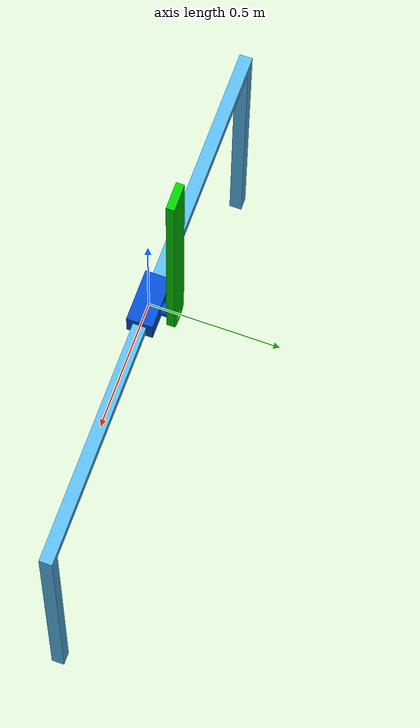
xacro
<?xml version="1.0"?>
<robot name="cart_pole" xmlns:xacro="http://ros.org/wiki/xacro">

  <xacro:property name="M_PI" value="3.14159274"/>

  <xacro:include filename="$(find robot_description)/urdf/base/base.urdf.xacro"/>
  <xacro:include filename="$(find robot_description)/urdf/cart/cart.urdf.xacro"/>
  <xacro:include filename="$(find robot_description)/urdf/pole/pole.urdf.xacro"/>
  <xacro:include filename="$(find robot_description)/urdf/tip/tip.urdf.xacro"/>

  <!-- =============== Link & Joint =============== -->
  <!-- Base -->
  <link name="base_footprint"/>
  <xacro:base_v0 parent="base_footprint">
	<origin xyz="0 0 0"/>
  </xacro:base_v0>

  <!-- Yaw_joint -->
  <xacro:cart_v0 parent="base_link">
	<origin xyz="0 0 0" rpy="0 0 0"/>
	<axis xyz="1 0 0"/>
  </xacro:cart_v0>

  <!-- Pitch_joint -->
  <xacro:pole_v0 parent="cart_link">
	<origin xyz="0 0.1 0" rpy="0 ${M_PI} 0"/>
	<axis xyz="0 1 0"/>
  </xacro:pole_v0>

  <xacro:tip_v0 parent="pole_link">
    <origin xyz="0 0 -1" rpy="0 0 0"/>
    <axis xyz="0 1 0"/>
  </xacro:tip_v0>

  <!-- =============== Transmissions =============== -->
  <xacro:cart_trans_v0/>

  <!-- =============== Gazebo =============== -->
  <gazebo>
    <plugin name="gazebo_ros_control" filename="libgazebo_ros_control.so"/>
  </gazebo>

  <xacro:base_gazebo_v0/>
  <xacro:cart_gazebo_v0/>
  <xacro:pole_gazebo_v0/>
  <xacro:tip_gazebo_v0/>

</robot>

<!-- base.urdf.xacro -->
<robot xmlns:xacro="http://ros.org/wiki/xacro">

  <xacro:include filename="$(find robot_description)/urdf/base/base.gazebo.xacro"/>

  <xacro:macro name="base_v0" params="parent *joint_origin">
	<joint name="base_link_joint" type="fixed">
	  <xacro:insert_block name="joint_origin"/>
	  <parent link="${parent}"/>
	  <child link="base_link"/>
	</joint>

	<link name="base_link">
	  <visual>
		<geometry>
		  <mesh filename="package://robot_description/meshes/DAE/base/stand.dae"/>
		</geometry>
	  </visual>
	  <collision>
		<geometry>
		  <mesh filename="package://robot_description/meshes/STL/base/stand.stl"/>
		</geometry>
	  </collision>
	  <inertial>
		<origin xyz="0 0 -0.333"/>
		<mass value="88"/>
		<inertia ixx="14.25" ixy="0" ixz="0.0245" iyy="78.78" iyz="0" izz="64.57" />
	  </inertial>
	</link>
  </xacro:macro>

</robot>

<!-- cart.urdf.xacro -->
<robot xmlns:xacro="http://ros.org/wiki/xacro">

  <xacro:include filename="$(find robot_description)/urdf/cart/cart.transmission.xacro"/>
  <xacro:include filename="$(find robot_description)/urdf/cart/cart.gazebo.xacro"/>

  <xacro:macro name="cart_v0" params="parent *joint_origin *joint_axis">
	<joint name="cart_joint" type="prismatic">
	  <xacro:insert_block name="joint_origin"/>
	  <parent link="${parent}"/>
	  <child link="cart_link"/>
          <limit effort="30" velocity="10" lower="-1.0" upper = "1.0"/>
          <dynamics damping="0.005" friction="0.1"/>
	  <xacro:insert_block name="joint_axis"/>
	</joint>

	<link name="cart_link">
	  <visual>
		<geometry>
		  <mesh filename="package://robot_description/meshes/DAE/cart/cart.dae"/>
		</geometry>
	  </visual>
	  <collision>
		<geometry>
		  <mesh filename="package://robot_description/meshes/STL/cart/cart.stl"/>
		</geometry>
	  </collision>
	  <inertial>
		<origin xyz="0 0 0"/>
		<mass value="2.7"/>
		<inertia ixx="0.005878" ixy="0" ixz="0" iyy="0.01145" iyz="0" izz="0.01186"/>
	  </inertial>
	</link>
  </xacro:macro>

</robot>

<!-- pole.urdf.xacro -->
<robot xmlns:xacro="http://ros.org/wiki/xacro">

  <xacro:include filename="$(find robot_description)/urdf/pole/pole.gazebo.xacro"/>

  <xacro:macro name="pole_v0" params="parent *joint_origin *joint_axis">
	<joint name="pole_joint" type="revolute">
	  <xacro:insert_block name="joint_origin"/>
	  <parent link="${parent}"/>
	  <child link="pole_link"/>
          <limit effort="15" velocity="10" lower="-1.7" upper = "1.7"/>
          <dynamics damping="0.00001" friction="0.01"/>
	  <xacro:insert_block name="joint_axis"/>
	</joint>

	<link name="pole_link">
	  <visual>
		<geometry>
		  <mesh filename="package://robot_description/meshes/DAE/pole/pole.dae"/>
		</geometry>
	  </visual>
	  <collision>
		<geometry>
		  <mesh filename="package://robot_description/meshes/STL/pole/pole.stl"/>
		</geometry>
	  </collision>
	  <inertial>
		<origin xyz="0 0 -0.489554"/>
		<mass value="0.85955"/>
		<inertia ixx="0.07508" ixy="0" ixz="-0.0000095" iyy="0.07574" iyz="0" izz="0.0007851"/>
	  </inertial>
	</link>
  </xacro:macro>

</robot>

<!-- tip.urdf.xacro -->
<robot xmlns:xacro="http://ros.org/wiki/xacro">

  <xacro:include filename="$(find robot_description)/urdf/tip/tip.gazebo.xacro"/>

  <xacro:macro name="tip_v0" params="parent *joint_origin *joint_axis">
	<joint name="tip_joint" type="revolute">
	  <xacro:insert_block name="joint_origin"/>
	  <parent link="${parent}"/>
	  <child link="tip_link"/>
          <limit effort="30" velocity="10" lower="-1.0" upper = "1.0"/>
          <dynamics damping="0.005" friction="0.1"/>
	  <xacro:insert_block name="joint_axis"/>
	</joint>

	<link name="tip_link">
	  <inertial>
		<origin xyz="0 0 0"/>
		<mass value="0.0001"/>
		<inertia ixx="0.00000001" ixy="0" ixz="0" iyy="0.00000001" iyz="0" izz="0.00000001"/>
	  </inertial>
	</link>
  </xacro:macro>

</robot>
